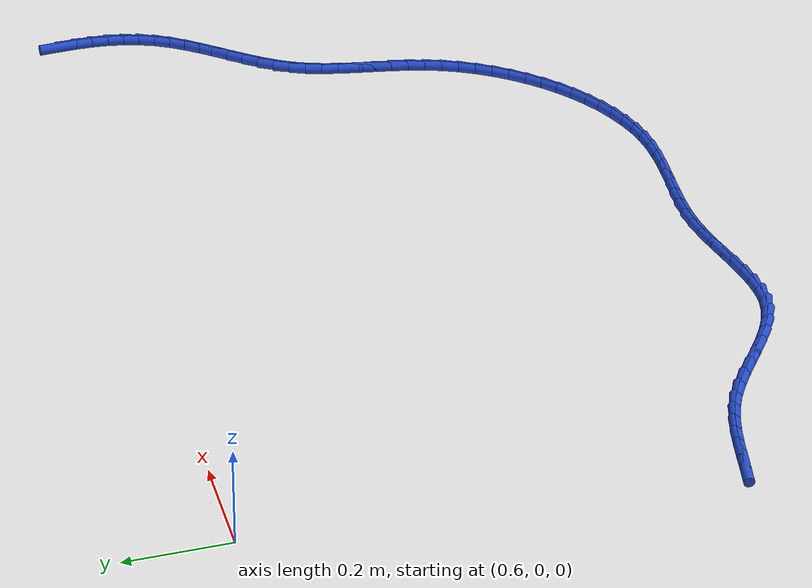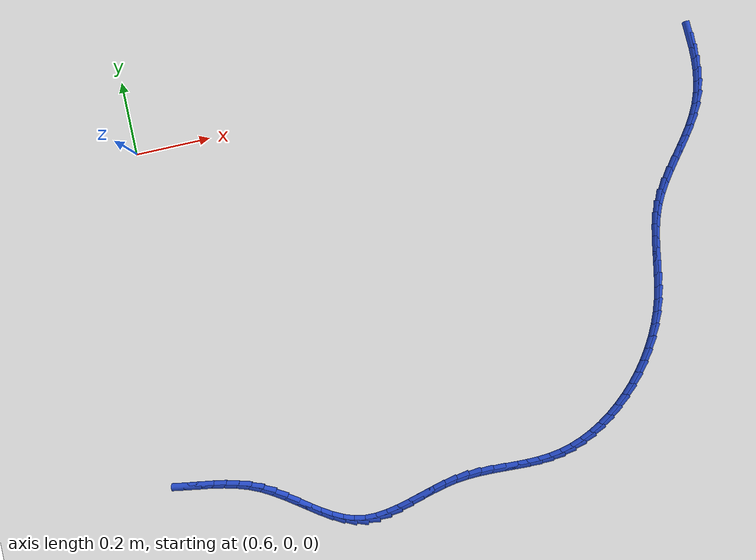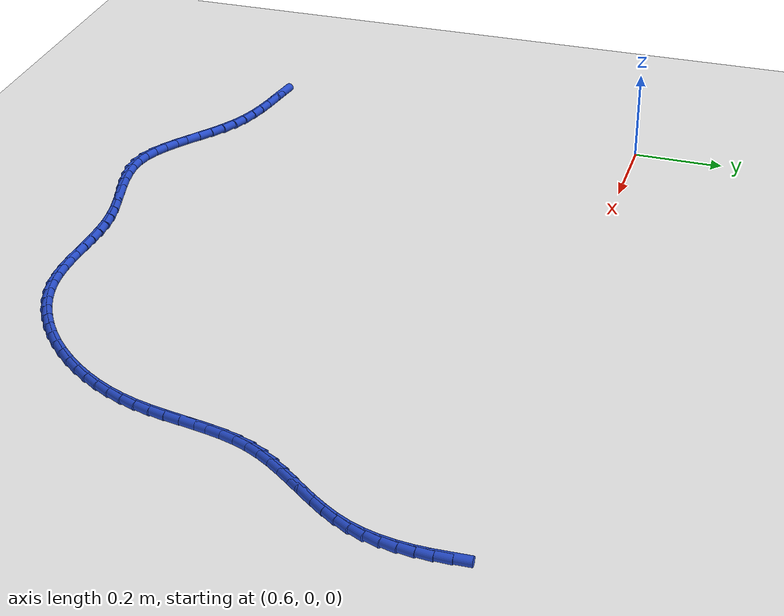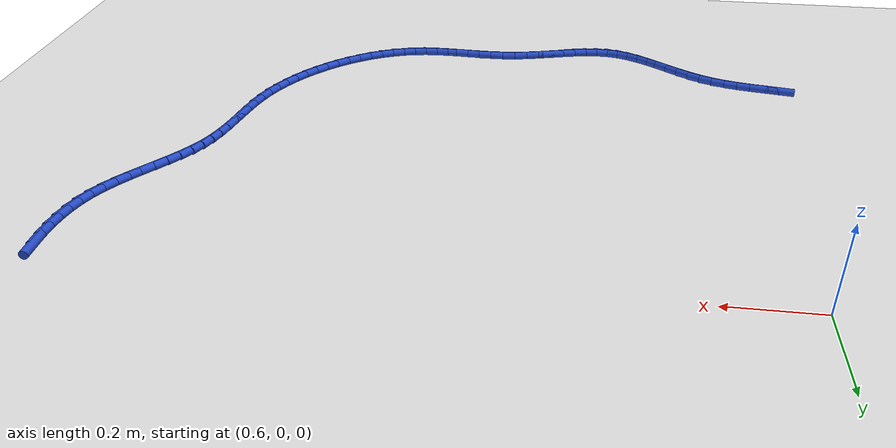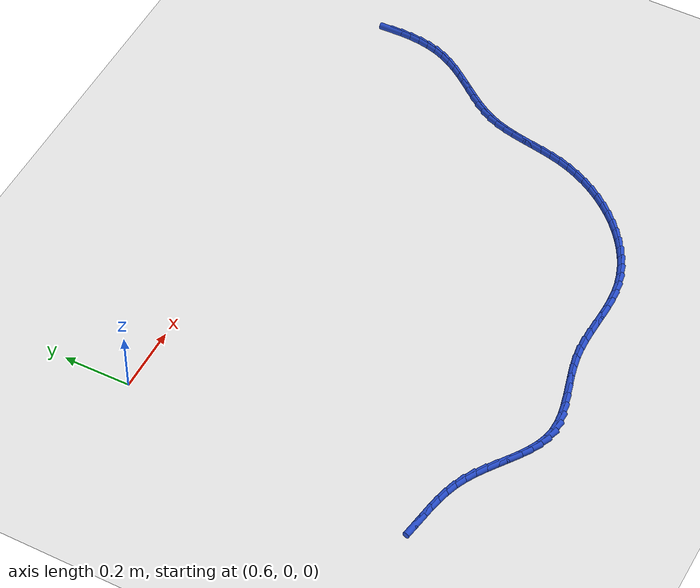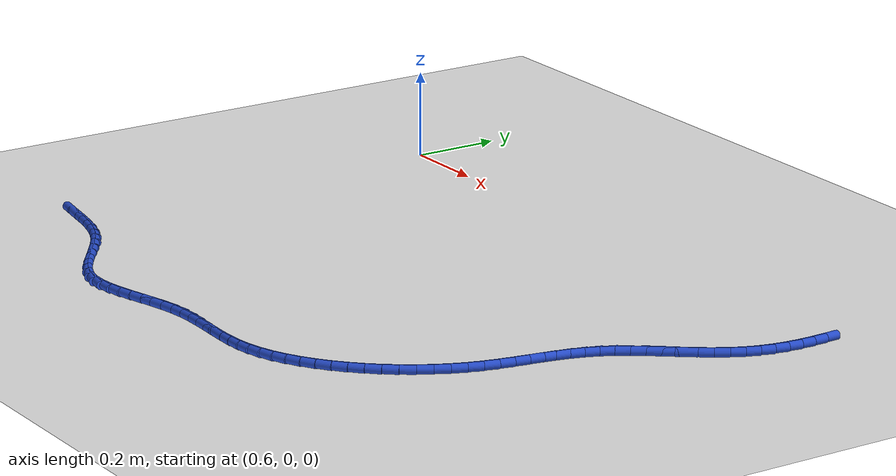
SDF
<sdf version="1.6">
 <world name="default">
  <model name="ground_plane">
   <static>1</static>
   <link name="link">
    <collision name="collision">
     <geometry><plane><normal>0 0 1</normal><size>100 100</size></plane></geometry>
     <surface><friction><ode><mu>100</mu><mu2>50</mu2></ode></friction></surface>
    </collision>
    <visual name="visual">
     <cast_shadows>0</cast_shadows>
     <geometry><plane><normal>0 0 1</normal><size>100 100</size></plane></geometry>
     <material>
      <script><uri>file://media/materials/scripts/gazebo.material</uri><name>Gazebo/WhiteGlow</name></script>
     </material>
    </visual>
   </link>
  </model>
  <model name="line">
   <link name="link_105">
    <pose>2.127927049027705 -0.014934316921393406 0.01 0 1.57 -1.5420571778890628</pose>
    <collision name="collision">
     <geometry><cylinder><radius>0.01</radius><length>0.08</length></cylinder></geometry>
    </collision>
    <visual name="visual">
     <material>
      <script><name>Gazebo/Blue</name><uri>file://media/materials/scripts/gazebo.material</uri></script>
     </material>
     <geometry><cylinder><radius>0.01</radius><length>0.08</length></cylinder></geometry>
    </visual>
   </link>
   <link name="link_106">
    <pose>2.1288633648620032 -0.047505150641928034 0.01 0 1.57 1.539166648223108</pose>
    <collision name="collision">
     <geometry><cylinder><radius>0.01</radius><length>0.08</length></cylinder></geometry>
    </collision>
    <visual name="visual">
     <material>
      <script><name>Gazebo/Blue</name><uri>file://media/materials/scripts/gazebo.material</uri></script>
     </material>
     <geometry><cylinder><radius>0.01</radius><length>0.08</length></cylinder></geometry>
    </visual>
   </link>
   <link name="link_107">
    <pose>2.127848360419523 -0.07958470323934361 0.01 0 1.57 1.4695602687728024</pose>
    <collision name="collision">
     <geometry><cylinder><radius>0.01</radius><length>0.08</length></cylinder></geometry>
    </collision>
    <visual name="visual">
     <material>
      <script><name>Gazebo/Blue</name><uri>file://media/materials/scripts/gazebo.material</uri></script>
     </material>
     <geometry><cylinder><radius>0.01</radius><length>0.08</length></cylinder></geometry>
    </visual>
   </link>
   <link name="link_108">
    <pose>2.1246513000893077 -0.11105699657689093 0.01 0 1.57 1.3903411598003887</pose>
    <collision name="collision">
     <geometry><cylinder><radius>0.01</radius><length>0.08</length></cylinder></geometry>
    </collision>
    <visual name="visual">
     <material>
      <script><name>Gazebo/Blue</name><uri>file://media/materials/scripts/gazebo.material</uri></script>
     </material>
     <geometry><cylinder><radius>0.01</radius><length>0.08</length></cylinder></geometry>
    </visual>
   </link>
   <link name="link_109">
    <pose>2.119041448260406 -0.14180605251781997 0.01 0 1.57 1.3015546267704148</pose>
    <collision name="collision">
     <geometry><cylinder><radius>0.01</radius><length>0.08</length></cylinder></geometry>
    </collision>
    <visual name="visual">
     <material>
      <script><name>Gazebo/Blue</name><uri>file://media/materials/scripts/gazebo.material</uri></script>
     </material>
     <geometry><cylinder><radius>0.01</radius><length>0.08</length></cylinder></geometry>
    </visual>
   </link>
   <link name="link_110">
    <pose>2.110788069321864 -0.17171589292538092 0.01 0 1.57 1.2038861024679162</pose>
    <collision name="collision">
     <geometry><cylinder><radius>0.01</radius><length>0.08</length></cylinder></geometry>
    </collision>
    <visual name="visual">
     <material>
      <script><name>Gazebo/Blue</name><uri>file://media/materials/scripts/gazebo.material</uri></script>
     </material>
     <geometry><cylinder><radius>0.01</radius><length>0.08</length></cylinder></geometry>
    </visual>
   </link>
   <link name="link_111">
    <pose>2.0996604276627293 -0.20067053966282372 0.01 0 1.57 1.1017450329079266</pose>
    <collision name="collision">
     <geometry><cylinder><radius>0.01</radius><length>0.08</length></cylinder></geometry>
    </collision>
    <visual name="visual">
     <material>
      <script><name>Gazebo/Blue</name><uri>file://media/materials/scripts/gazebo.material</uri></script>
     </material>
     <geometry><cylinder><radius>0.01</radius><length>0.08</length></cylinder></geometry>
    </visual>
   </link>
   <link name="link_112">
    <pose>2.0855129344408874 -0.2285873663614673 0.01 0 1.57 1.0170549605644297</pose>
    <collision name="collision">
     <geometry><cylinder><radius>0.01</radius><length>0.08</length></cylinder></geometry>
    </collision>
    <visual name="visual">
     <material>
      <script><name>Gazebo/Blue</name><uri>file://media/materials/scripts/gazebo.material</uri></script>
     </material>
     <geometry><cylinder><radius>0.01</radius><length>0.08</length></cylinder></geometry>
    </visual>
   </link>
   <link name="link_113">
    <pose>2.068800299482606 -0.25561888208092465 0.01 0 1.57 0.9579107602247918</pose>
    <collision name="collision">
     <geometry><cylinder><radius>0.01</radius><length>0.08</length></cylinder></geometry>
    </collision>
    <visual name="visual">
     <material>
      <script><name>Gazebo/Blue</name><uri>file://media/materials/scripts/gazebo.material</uri></script>
     </material>
     <geometry><cylinder><radius>0.01</radius><length>0.08</length></cylinder></geometry>
    </visual>
   </link>
   <link name="link_114">
    <pose>2.0502353490705247 -0.28201869942595853 0.01 0 1.57 0.92271565101847</pose>
    <collision name="collision">
     <geometry><cylinder><radius>0.01</radius><length>0.08</length></cylinder></geometry>
    </collision>
    <visual name="visual">
     <material>
      <script><name>Gazebo/Blue</name><uri>file://media/materials/scripts/gazebo.material</uri></script>
     </material>
     <geometry><cylinder><radius>0.01</radius><length>0.08</length></cylinder></geometry>
    </visual>
   </link>
   <link name="link_115">
    <pose>2.0305319101449983 -0.3080408229563561 0.01 0 1.57 0.9101171733580589</pose>
    <collision name="collision">
     <geometry><cylinder><radius>0.01</radius><length>0.08</length></cylinder></geometry>
    </collision>
    <visual name="visual">
     <material>
      <script><name>Gazebo/Blue</name><uri>file://media/materials/scripts/gazebo.material</uri></script>
     </material>
     <geometry><cylinder><radius>0.01</radius><length>0.08</length></cylinder></geometry>
    </visual>
   </link>
   <link name="link_116">
    <pose>2.0104038096463808 -0.33393925723190465 0.01 0 1.57 0.919537152113355</pose>
    <collision name="collision">
     <geometry><cylinder><radius>0.01</radius><length>0.08</length></cylinder></geometry>
    </collision>
    <visual name="visual">
     <material>
      <script><name>Gazebo/Blue</name><uri>file://media/materials/scripts/gazebo.material</uri></script>
     </material>
     <geometry><cylinder><radius>0.01</radius><length>0.08</length></cylinder></geometry>
    </visual>
   </link>
   <link name="link_117">
    <pose>1.9905648745150255 -0.3599680068123914 0.01 0 1.57 0.9513127651278334</pose>
    <collision name="collision">
     <geometry><cylinder><radius>0.01</radius><length>0.08</length></cylinder></geometry>
    </collision>
    <visual name="visual">
     <material>
      <script><name>Gazebo/Blue</name><uri>file://media/materials/scripts/gazebo.material</uri></script>
     </material>
     <geometry><cylinder><radius>0.01</radius><length>0.08</length></cylinder></geometry>
    </visual>
   </link>
   <link name="link_118">
    <pose>1.9717289316912863 -0.38638107625760343 0.01 0 1.57 1.0065812385501156</pose>
    <collision name="collision">
     <geometry><cylinder><radius>0.01</radius><length>0.08</length></cylinder></geometry>
    </collision>
    <visual name="visual">
     <material>
      <script><name>Gazebo/Blue</name><uri>file://media/materials/scripts/gazebo.material</uri></script>
     </material>
     <geometry><cylinder><radius>0.01</radius><length>0.08</length></cylinder></geometry>
    </visual>
   </link>
   <link name="link_119">
    <pose>1.9546098081155177 -0.413432470127329 0.01 0 1.57 1.0868438477391245</pose>
    <collision name="collision">
     <geometry><cylinder><radius>0.01</radius><length>0.08</length></cylinder></geometry>
    </collision>
    <visual name="visual">
     <material>
      <script><name>Gazebo/Blue</name><uri>file://media/materials/scripts/gazebo.material</uri></script>
     </material>
     <geometry><cylinder><radius>0.01</radius><length>0.08</length></cylinder></geometry>
    </visual>
   </link>
   <link name="link_120">
    <pose>1.9399213307280732 -0.44137619298135367 0.01 0 1.57 1.1860012703031202</pose>
    <collision name="collision">
     <geometry><cylinder><radius>0.01</radius><length>0.08</length></cylinder></geometry>
    </collision>
    <visual name="visual">
     <material>
      <script><name>Gazebo/Blue</name><uri>file://media/materials/scripts/gazebo.material</uri></script>
     </material>
     <geometry><cylinder><radius>0.01</radius><length>0.08</length></cylinder></geometry>
    </visual>
   </link>
   <link name="link_121">
    <pose>1.9281673302751468 -0.47039960251246765 0.01 0 1.57 1.2720107968128591</pose>
    <collision name="collision">
     <geometry><cylinder><radius>0.01</radius><length>0.08</length></cylinder></geometry>
    </collision>
    <visual name="visual">
     <material>
      <script><name>Gazebo/Blue</name><uri>file://media/materials/scripts/gazebo.material</uri></script>
     </material>
     <geometry><cylinder><radius>0.01</radius><length>0.08</length></cylinder></geometry>
    </visual>
   </link>
   <link name="link_122">
    <pose>1.9189279767766039 -0.5003969125599491 0.01 0 1.57 1.334942716152788</pose>
    <collision name="collision">
     <geometry><cylinder><radius>0.01</radius><length>0.08</length></cylinder></geometry>
    </collision>
    <visual name="visual">
     <material>
      <script><name>Gazebo/Blue</name><uri>file://media/materials/scripts/gazebo.material</uri></script>
     </material>
     <geometry><cylinder><radius>0.01</radius><length>0.08</length></cylinder></geometry>
    </visual>
   </link>
   <link name="link_123">
    <pose>1.9115295633889557 -0.5311817636097663 0.01 0 1.57 1.3748109836931102</pose>
    <collision name="collision">
     <geometry><cylinder><radius>0.01</radius><length>0.08</length></cylinder></geometry>
    </collision>
    <visual name="visual">
     <material>
      <script><name>Gazebo/Blue</name><uri>file://media/materials/scripts/gazebo.material</uri></script>
     </material>
     <geometry><cylinder><radius>0.01</radius><length>0.08</length></cylinder></geometry>
    </visual>
   </link>
   <link name="link_124">
    <pose>1.9052983759470201 -0.562567793824188 0.01 0 1.57 1.3922915211109326</pose>
    <collision name="collision">
     <geometry><cylinder><radius>0.01</radius><length>0.08</length></cylinder></geometry>
    </collision>
    <visual name="visual">
     <material>
      <script><name>Gazebo/Blue</name><uri>file://media/materials/scripts/gazebo.material</uri></script>
     </material>
     <geometry><cylinder><radius>0.01</radius><length>0.08</length></cylinder></geometry>
    </visual>
   </link>
   <link name="link_125">
    <pose>1.8995607002856147 -0.5943686413654844 0.01 0 1.57 1.388092280318739</pose>
    <collision name="collision">
     <geometry><cylinder><radius>0.01</radius><length>0.08</length></cylinder></geometry>
    </collision>
    <visual name="visual">
     <material>
      <script><name>Gazebo/Blue</name><uri>file://media/materials/scripts/gazebo.material</uri></script>
     </material>
     <geometry><cylinder><radius>0.01</radius><length>0.08</length></cylinder></geometry>
    </visual>
   </link>
   <link name="link_126">
    <pose>1.893642822239557 -0.6263979443959234 0.01 0 1.57 1.362705372906539</pose>
    <collision name="collision">
     <geometry><cylinder><radius>0.01</radius><length>0.08</length></cylinder></geometry>
    </collision>
    <visual name="visual">
     <material>
      <script><name>Gazebo/Blue</name><uri>file://media/materials/scripts/gazebo.material</uri></script>
     </material>
     <geometry><cylinder><radius>0.01</radius><length>0.08</length></cylinder></geometry>
    </visual>
   </link>
   <link name="link_127">
    <pose>1.8868710276436658 -0.6584693410777749 0.01 0 1.57 1.3164760340896264</pose>
    <collision name="collision">
     <geometry><cylinder><radius>0.01</radius><length>0.08</length></cylinder></geometry>
    </collision>
    <visual name="visual">
     <material>
      <script><name>Gazebo/Blue</name><uri>file://media/materials/scripts/gazebo.material</uri></script>
     </material>
     <geometry><cylinder><radius>0.01</radius><length>0.08</length></cylinder></geometry>
    </visual>
   </link>
   <link name="link_128">
    <pose>1.8785716023327579 -0.690396469573308 0.01 0 1.57 1.250534209592732</pose>
    <collision name="collision">
     <geometry><cylinder><radius>0.01</radius><length>0.08</length></cylinder></geometry>
    </collision>
    <visual name="visual">
     <material>
      <script><name>Gazebo/Blue</name><uri>file://media/materials/scripts/gazebo.material</uri></script>
     </material>
     <geometry><cylinder><radius>0.01</radius><length>0.08</length></cylinder></geometry>
    </visual>
   </link>
   <link name="link_129">
    <pose>1.8680916317089928 -0.7219930689998038 0.01 0 1.57 1.1773505461855036</pose>
    <collision name="collision">
     <geometry><cylinder><radius>0.01</radius><length>0.08</length></cylinder></geometry>
    </collision>
    <visual name="visual">
     <material>
      <script><name>Gazebo/Blue</name><uri>file://media/materials/scripts/gazebo.material</uri></script>
     </material>
     <geometry><cylinder><radius>0.01</radius><length>0.08</length></cylinder></geometry>
    </visual>
   </link>
   <link name="link_130">
    <pose>1.855189926185268 -0.7530748768672316 0.01 0 1.57 1.1072919873184106</pose>
    <collision name="collision">
     <geometry><cylinder><radius>0.01</radius><length>0.08</length></cylinder></geometry>
    </collision>
    <visual name="visual">
     <material>
      <script><name>Gazebo/Blue</name><uri>file://media/materials/scripts/gazebo.material</uri></script>
     </material>
     <geometry><cylinder><radius>0.01</radius><length>0.08</length></cylinder></geometry>
    </visual>
   </link>
   <link name="link_131">
    <pose>1.8400030735576856 -0.783459464306401 0.01 0 1.57 1.0399406071361172</pose>
    <collision name="collision">
     <geometry><cylinder><radius>0.01</radius><length>0.08</length></cylinder></geometry>
    </collision>
    <visual name="visual">
     <material>
      <script><name>Gazebo/Blue</name><uri>file://media/materials/scripts/gazebo.material</uri></script>
     </material>
     <geometry><cylinder><radius>0.01</radius><length>0.08</length></cylinder></geometry>
    </visual>
   </link>
   <link name="link_132">
    <pose>1.8226816559002614 -0.8129644703722518 0.01 0 1.57 0.97448284143933</pose>
    <collision name="collision">
     <geometry><cylinder><radius>0.01</radius><length>0.08</length></cylinder></geometry>
    </collision>
    <visual name="visual">
     <material>
      <script><name>Gazebo/Blue</name><uri>file://media/materials/scripts/gazebo.material</uri></script>
     </material>
     <geometry><cylinder><radius>0.01</radius><length>0.08</length></cylinder></geometry>
    </visual>
   </link>
   <link name="link_133">
    <pose>1.803376255287013 -0.8414075341197209 0.01 0 1.57 0.9101149813527003</pose>
    <collision name="collision">
     <geometry><cylinder><radius>0.01</radius><length>0.08</length></cylinder></geometry>
    </collision>
    <visual name="visual">
     <material>
      <script><name>Gazebo/Blue</name><uri>file://media/materials/scripts/gazebo.material</uri></script>
     </material>
     <geometry><cylinder><radius>0.01</radius><length>0.08</length></cylinder></geometry>
    </visual>
   </link>
   <link name="link_134">
    <pose>1.782237453791957 -0.8686062946037479 0.01 0 1.57 0.8460409471744731</pose>
    <collision name="collision">
     <geometry><cylinder><radius>0.01</radius><length>0.08</length></cylinder></geometry>
    </collision>
    <visual name="visual">
     <material>
      <script><name>Gazebo/Blue</name><uri>file://media/materials/scripts/gazebo.material</uri></script>
     </material>
     <geometry><cylinder><radius>0.01</radius><length>0.08</length></cylinder></geometry>
    </visual>
   </link>
   <link name="link_135">
    <pose>1.759415833489109 -0.8943783908792715 0.01 0 1.57 0.7814658259945908</pose>
    <collision name="collision">
     <geometry><cylinder><radius>0.01</radius><length>0.08</length></cylinder></geometry>
    </collision>
    <visual name="visual">
     <material>
      <script><name>Gazebo/Blue</name><uri>file://media/materials/scripts/gazebo.material</uri></script>
     </material>
     <geometry><cylinder><radius>0.01</radius><length>0.08</length></cylinder></geometry>
    </visual>
   </link>
   <link name="link_136">
    <pose>1.7350619764524873 -0.9185414620012307 0.01 0 1.57 0.7155882249536992</pose>
    <collision name="collision">
     <geometry><cylinder><radius>0.01</radius><length>0.08</length></cylinder></geometry>
    </collision>
    <visual name="visual">
     <material>
      <script><name>Gazebo/Blue</name><uri>file://media/materials/scripts/gazebo.material</uri></script>
     </material>
     <geometry><cylinder><radius>0.01</radius><length>0.08</length></cylinder></geometry>
    </visual>
   </link>
   <link name="link_137">
    <pose>1.7093264647561062 -0.9409131470245636 0.01 0 1.57 0.6475942981298243</pose>
    <collision name="collision">
     <geometry><cylinder><radius>0.01</radius><length>0.08</length></cylinder></geometry>
    </collision>
    <visual name="visual">
     <material>
      <script><name>Gazebo/Blue</name><uri>file://media/materials/scripts/gazebo.material</uri></script>
     </material>
     <geometry><cylinder><radius>0.01</radius><length>0.08</length></cylinder></geometry>
    </visual>
   </link>
   <link name="link_138">
    <pose>1.6823598804739834 -0.96131108500421 0.01 0 1.57 0.5766566785957256</pose>
    <collision name="collision">
     <geometry><cylinder><radius>0.01</radius><length>0.08</length></cylinder></geometry>
    </collision>
    <visual name="visual">
     <material>
      <script><name>Gazebo/Blue</name><uri>file://media/materials/scripts/gazebo.material</uri></script>
     </material>
     <geometry><cylinder><radius>0.01</radius><length>0.08</length></cylinder></geometry>
    </visual>
   </link>
   <link name="link_139">
    <pose>1.6543128056801353 -0.9795529149951071 0.01 0 1.57 0.5019424617344164</pose>
    <collision name="collision">
     <geometry><cylinder><radius>0.01</radius><length>0.08</length></cylinder></geometry>
    </collision>
    <visual name="visual">
     <material>
      <script><name>Gazebo/Blue</name><uri>file://media/materials/scripts/gazebo.material</uri></script>
     </material>
     <geometry><cylinder><radius>0.01</radius><length>0.08</length></cylinder></geometry>
    </visual>
   </link>
   <link name="link_140">
    <pose>1.6253358224485788 -0.9954562760521942 0.01 0 1.57 0.4226356903004382</pose>
    <collision name="collision">
     <geometry><cylinder><radius>0.01</radius><length>0.08</length></cylinder></geometry>
    </collision>
    <visual name="visual">
     <material>
      <script><name>Gazebo/Blue</name><uri>file://media/materials/scripts/gazebo.material</uri></script>
     </material>
     <geometry><cylinder><radius>0.01</radius><length>0.08</length></cylinder></geometry>
    </visual>
   </link>
   <link name="link_141">
    <pose>1.5955795128533303 -1.0088388072304106 0.01 0 1.57 0.3379810263555821</pose>
    <collision name="collision">
     <geometry><cylinder><radius>0.01</radius><length>0.08</length></cylinder></geometry>
    </collision>
    <visual name="visual">
     <material>
      <script><name>Gazebo/Blue</name><uri>file://media/materials/scripts/gazebo.material</uri></script>
     </material>
     <geometry><cylinder><radius>0.01</radius><length>0.08</length></cylinder></geometry>
    </visual>
   </link>
   <link name="link_142">
    <pose>1.565194458968406 -1.0195181475846944 0.01 0 1.57 0.24735539156995281</pose>
    <collision name="collision">
     <geometry><cylinder><radius>0.01</radius><length>0.08</length></cylinder></geometry>
    </collision>
    <visual name="visual">
     <material>
      <script><name>Gazebo/Blue</name><uri>file://media/materials/scripts/gazebo.material</uri></script>
     </material>
     <geometry><cylinder><radius>0.01</radius><length>0.08</length></cylinder></geometry>
    </visual>
   </link>
   <link name="link_143">
    <pose>1.5343312428678235 -1.0273119361699847 0.01 0 1.57 0.15238115490402032</pose>
    <collision name="collision">
     <geometry><cylinder><radius>0.01</radius><length>0.08</length></cylinder></geometry>
    </collision>
    <visual name="visual">
     <material>
      <script><name>Gazebo/Blue</name><uri>file://media/materials/scripts/gazebo.material</uri></script>
     </material>
     <geometry><cylinder><radius>0.01</radius><length>0.08</length></cylinder></geometry>
    </visual>
   </link>
   <link name="link_144">
    <pose>1.5031307813240036 -1.0321034423544446 0.01 0 1.57 0.0701363854756765</pose>
    <collision name="collision">
     <geometry><cylinder><radius>0.01</radius><length>0.08</length></cylinder></geometry>
    </collision>
    <visual name="visual">
     <material>
      <script><name>Gazebo/Blue</name><uri>file://media/materials/scripts/gazebo.material</uri></script>
     </material>
     <geometry><cylinder><radius>0.01</radius><length>0.08</length></cylinder></geometry>
    </visual>
   </link>
   <link name="link_145">
    <pose>1.4716546491298854 -1.0343146914793515 0.01 0 1.57 0.009997819135465224</pose>
    <collision name="collision">
     <geometry><cylinder><radius>0.01</radius><length>0.08</length></cylinder></geometry>
    </collision>
    <visual name="visual">
     <material>
      <script><name>Gazebo/Blue</name><uri>file://media/materials/scripts/gazebo.material</uri></script>
     </material>
     <geometry><cylinder><radius>0.01</radius><length>0.08</length></cylinder></geometry>
    </visual>
   </link>
   <link name="link_146">
    <pose>1.4399255103837256 -1.0346319242397437 0.01 0 1.57 -0.027800428637546972</pose>
    <collision name="collision">
     <geometry><cylinder><radius>0.01</radius><length>0.08</length></cylinder></geometry>
    </collision>
    <visual name="visual">
     <material>
      <script><name>Gazebo/Blue</name><uri>file://media/materials/scripts/gazebo.material</uri></script>
     </material>
     <geometry><cylinder><radius>0.01</radius><length>0.08</length></cylinder></geometry>
    </visual>
   </link>
   <link name="link_147">
    <pose>1.407965761269522 -1.0337432005492904 0.01 0 1.57 -0.0436995254306826</pose>
    <collision name="collision">
     <geometry><cylinder><radius>0.01</radius><length>0.08</length></cylinder></geometry>
    </collision>
    <visual name="visual">
     <material>
      <script><name>Gazebo/Blue</name><uri>file://media/materials/scripts/gazebo.material</uri></script>
     </material>
     <geometry><cylinder><radius>0.01</radius><length>0.08</length></cylinder></geometry>
    </visual>
   </link>
   <link name="link_148">
    <pose>1.3757977979712714 -1.03233658032166 0.01 0 1.57 -0.038198175650141594</pose>
    <collision name="collision">
     <geometry><cylinder><radius>0.01</radius><length>0.08</length></cylinder></geometry>
    </collision>
    <visual name="visual">
     <material>
      <script><name>Gazebo/Blue</name><uri>file://media/materials/scripts/gazebo.material</uri></script>
     </material>
     <geometry><cylinder><radius>0.01</radius><length>0.08</length></cylinder></geometry>
    </visual>
   </link>
   <link name="link_149">
    <pose>1.3434440166729709 -1.0311001234705217 0.01 0 1.57 -0.011631274155324873</pose>
    <collision name="collision">
     <geometry><cylinder><radius>0.01</radius><length>0.08</length></cylinder></geometry>
    </collision>
    <visual name="visual">
     <material>
      <script><name>Gazebo/Blue</name><uri>file://media/materials/scripts/gazebo.material</uri></script>
     </material>
     <geometry><cylinder><radius>0.01</radius><length>0.08</length></cylinder></geometry>
    </visual>
   </link>
   <link name="link_150">
    <pose>1.310926813558618 -1.030721889909544 0.01 0 1.57 0.035750621343602317</pose>
    <collision name="collision">
     <geometry><cylinder><radius>0.01</radius><length>0.08</length></cylinder></geometry>
    </collision>
    <visual name="visual">
     <material>
      <script><name>Gazebo/Blue</name><uri>file://media/materials/scripts/gazebo.material</uri></script>
     </material>
     <geometry><cylinder><radius>0.01</radius><length>0.08</length></cylinder></geometry>
    </visual>
   </link>
   <link name="link_151">
    <pose>1.2782685848122095 -1.0318899395523962 0.01 0 1.57 0.10343211611994696</pose>
    <collision name="collision">
     <geometry><cylinder><radius>0.01</radius><length>0.08</length></cylinder></geometry>
    </collision>
    <visual name="visual">
     <material>
      <script><name>Gazebo/Blue</name><uri>file://media/materials/scripts/gazebo.material</uri></script>
     </material>
     <geometry><cylinder><radius>0.01</radius><length>0.08</length></cylinder></geometry>
    </visual>
   </link>
   <link name="link_152">
    <pose>1.2454917312179359 -1.0352922604477182 0.01 0 1.57 0.1805689761486234</pose>
    <collision name="collision">
     <geometry><cylinder><radius>0.01</radius><length>0.08</length></cylinder></geometry>
    </collision>
    <visual name="visual">
     <material>
      <script><name>Gazebo/Blue</name><uri>file://media/materials/scripts/gazebo.material</uri></script>
     </material>
     <geometry><cylinder><radius>0.01</radius><length>0.08</length></cylinder></geometry>
    </visual>
   </link>
   <link name="link_153">
    <pose>1.212639596839226 -1.0412896609003375 0.01 0 1.57 0.23546889057979717</pose>
    <collision name="collision">
     <geometry><cylinder><radius>0.01</radius><length>0.08</length></cylinder></geometry>
    </collision>
    <visual name="visual">
     <material>
      <script><name>Gazebo/Blue</name><uri>file://media/materials/scripts/gazebo.material</uri></script>
     </material>
     <geometry><cylinder><radius>0.01</radius><length>0.08</length></cylinder></geometry>
    </visual>
   </link>
   <link name="link_154">
    <pose>1.1798246805471002 -1.049162600146099 0.01 0 1.57 0.2634408100997699</pose>
    <collision name="collision">
     <geometry><cylinder><radius>0.01</radius><length>0.08</length></cylinder></geometry>
    </collision>
    <visual name="visual">
     <material>
      <script><name>Gazebo/Blue</name><uri>file://media/materials/scripts/gazebo.material</uri></script>
     </material>
     <geometry><cylinder><radius>0.01</radius><length>0.08</length></cylinder></geometry>
    </visual>
   </link>
   <link name="link_155">
    <pose>1.1471737350204234 -1.0579688618242795 0.01 0 1.57 0.26544227473119214</pose>
    <collision name="collision">
     <geometry><cylinder><radius>0.01</radius><length>0.08</length></cylinder></geometry>
    </collision>
    <visual name="visual">
     <material>
      <script><name>Gazebo/Blue</name><uri>file://media/materials/scripts/gazebo.material</uri></script>
     </material>
     <geometry><cylinder><radius>0.01</radius><length>0.08</length></cylinder></geometry>
    </visual>
   </link>
   <link name="link_156">
    <pose>1.1148135129380616 -1.066766229574158 0.01 0 1.57 0.24086625849142163</pose>
    <collision name="collision">
     <geometry><cylinder><radius>0.01</radius><length>0.08</length></cylinder></geometry>
    </collision>
    <visual name="visual">
     <material>
      <script><name>Gazebo/Blue</name><uri>file://media/materials/scripts/gazebo.material</uri></script>
     </material>
     <geometry><cylinder><radius>0.01</radius><length>0.08</length></cylinder></geometry>
    </visual>
   </link>
   <link name="link_157">
    <pose>1.0828707669788789 -1.0746124870350113 0.01 0 1.57 0.1873688442834111</pose>
    <collision name="collision">
     <geometry><cylinder><radius>0.01</radius><length>0.08</length></cylinder></geometry>
    </collision>
    <visual name="visual">
     <material>
      <script><name>Gazebo/Blue</name><uri>file://media/materials/scripts/gazebo.material</uri></script>
     </material>
     <geometry><cylinder><radius>0.01</radius><length>0.08</length></cylinder></geometry>
    </visual>
   </link>
   <link name="link_158">
    <pose>1.0514722498217421 -1.080565417846118 0.01 0 1.57 0.10110664365014613</pose>
    <collision name="collision">
     <geometry><cylinder><radius>0.01</radius><length>0.08</length></cylinder></geometry>
    </collision>
    <visual name="visual">
     <material>
      <script><name>Gazebo/Blue</name><uri>file://media/materials/scripts/gazebo.material</uri></script>
     </material>
     <geometry><cylinder><radius>0.01</radius><length>0.08</length></cylinder></geometry>
    </visual>
   </link>
   <link name="link_159">
    <pose>1.0207447141455162 -1.0836828056467551 0.01 0 1.57 -0.022060435002364962</pose>
    <collision name="collision">
     <geometry><cylinder><radius>0.01</radius><length>0.08</length></cylinder></geometry>
    </collision>
    <visual name="visual">
     <material>
      <script><name>Gazebo/Blue</name><uri>file://media/materials/scripts/gazebo.material</uri></script>
     </material>
     <geometry><cylinder><radius>0.01</radius><length>0.08</length></cylinder></geometry>
    </visual>
   </link>
   <link name="link_160">
    <pose>0.9908149126290658 -1.0830224340762011 0.01 0 1.57 -0.18232902540482943</pose>
    <collision name="collision">
     <geometry><cylinder><radius>0.01</radius><length>0.08</length></cylinder></geometry>
    </collision>
    <visual name="visual">
     <material>
      <script><name>Gazebo/Blue</name><uri>file://media/materials/scripts/gazebo.material</uri></script>
     </material>
     <geometry><cylinder><radius>0.01</radius><length>0.08</length></cylinder></geometry>
    </visual>
   </link>
   <link name="link_161">
    <pose>0.9618034096808337 -1.0776733889066015 0.01 0 1.57 -0.3438651031392934</pose>
    <collision name="collision">
     <geometry><cylinder><radius>0.01</radius><length>0.08</length></cylinder></geometry>
    </collision>
    <visual name="visual">
     <material>
      <script><name>Gazebo/Blue</name><uri>file://media/materials/scripts/gazebo.material</uri></script>
     </material>
     <geometry><cylinder><radius>0.01</radius><length>0.08</length></cylinder></geometry>
    </visual>
   </link>
   <link name="link_162">
    <pose>0.9336587242518208 -1.067595013574978 0.01 0 1.57 -0.46728960441944495</pose>
    <collision name="collision">
     <geometry><cylinder><radius>0.01</radius><length>0.08</length></cylinder></geometry>
    </collision>
    <visual name="visual">
     <material>
      <script><name>Gazebo/Blue</name><uri>file://media/materials/scripts/gazebo.material</uri></script>
     </material>
     <geometry><cylinder><radius>0.01</radius><length>0.08</length></cylinder></geometry>
    </visual>
   </link>
   <link name="link_163">
    <pose>0.9061389978527367 -1.05370963786567 0.01 0 1.57 -0.5520451192139785</pose>
    <collision name="collision">
     <geometry><cylinder><radius>0.01</radius><length>0.08</length></cylinder></geometry>
    </collision>
    <visual name="visual">
     <material>
      <script><name>Gazebo/Blue</name><uri>file://media/materials/scripts/gazebo.material</uri></script>
     </material>
     <geometry><cylinder><radius>0.01</radius><length>0.08</length></cylinder></geometry>
    </visual>
   </link>
   <link name="link_164">
    <pose>0.8789925055407566 -1.0369894990522333 0.01 0 1.57 -0.602362438440819</pose>
    <collision name="collision">
     <geometry><cylinder><radius>0.01</radius><length>0.08</length></cylinder></geometry>
    </collision>
    <visual name="visual">
     <material>
      <script><name>Gazebo/Blue</name><uri>file://media/materials/scripts/gazebo.material</uri></script>
     </material>
     <geometry><cylinder><radius>0.01</radius><length>0.08</length></cylinder></geometry>
    </visual>
   </link>
   <link name="link_165">
    <pose>0.8519675223730584 -1.0184068344082267 0.01 0 1.57 -0.6221095479202736</pose>
    <collision name="collision">
     <geometry><cylinder><radius>0.01</radius><length>0.08</length></cylinder></geometry>
    </collision>
    <visual name="visual">
     <material>
      <script><name>Gazebo/Blue</name><uri>file://media/materials/scripts/gazebo.material</uri></script>
     </material>
     <geometry><cylinder><radius>0.01</radius><length>0.08</length></cylinder></geometry>
    </visual>
   </link>
   <link name="link_166">
    <pose>0.8248123234068175 -0.9989338812072069 0.01 0 1.57 -0.6135234353525587</pose>
    <collision name="collision">
     <geometry><cylinder><radius>0.01</radius><length>0.08</length></cylinder></geometry>
    </collision>
    <visual name="visual">
     <material>
      <script><name>Gazebo/Blue</name><uri>file://media/materials/scripts/gazebo.material</uri></script>
     </material>
     <geometry><cylinder><radius>0.01</radius><length>0.08</length></cylinder></geometry>
    </visual>
   </link>
   <link name="link_167">
    <pose>0.7972751836992105 -0.9795428767227311 0.01 0 1.57 -0.577018651748658</pose>
    <collision name="collision">
     <geometry><cylinder><radius>0.01</radius><length>0.08</length></cylinder></geometry>
    </collision>
    <visual name="visual">
     <material>
      <script><name>Gazebo/Blue</name><uri>file://media/materials/scripts/gazebo.material</uri></script>
     </material>
     <geometry><cylinder><radius>0.01</radius><length>0.08</length></cylinder></geometry>
    </visual>
   </link>
   <link name="link_168">
    <pose>0.7691043783074134 -0.9612060582283567 0.01 0 1.57 -0.511507579026494</pose>
    <collision name="collision">
     <geometry><cylinder><radius>0.01</radius><length>0.08</length></cylinder></geometry>
    </collision>
    <visual name="visual">
     <material>
      <script><name>Gazebo/Blue</name><uri>file://media/materials/scripts/gazebo.material</uri></script>
     </material>
     <geometry><cylinder><radius>0.01</radius><length>0.08</length></cylinder></geometry>
    </visual>
   </link>
   <link name="link_169">
    <pose>0.7400481822886026 -0.9448956629976407 0.01 0 1.57 -0.41733514305752006</pose>
    <collision name="collision">
     <geometry><cylinder><radius>0.01</radius><length>0.08</length></cylinder></geometry>
    </collision>
    <visual name="visual">
     <material>
      <script><name>Gazebo/Blue</name><uri>file://media/materials/scripts/gazebo.material</uri></script>
     </material>
     <geometry><cylinder><radius>0.01</radius><length>0.08</length></cylinder></geometry>
    </visual>
   </link>
   <link name="link_170">
    <pose>0.7098769892046436 -0.9315183583065916 0.01 0 1.57 -0.3224062967866597</pose>
    <collision name="collision">
     <geometry><cylinder><radius>0.01</radius><length>0.08</length></cylinder></geometry>
    </collision>
    <visual name="visual">
     <material>
      <script><name>Gazebo/Blue</name><uri>file://media/materials/scripts/gazebo.material</uri></script>
     </material>
     <geometry><cylinder><radius>0.01</radius><length>0.08</length></cylinder></geometry>
    </visual>
   </link>
   <link name="link_171">
    <pose>0.6786615326885383 -0.9210904574943674 0.01 0 1.57 -0.2482378524226489</pose>
    <collision name="collision">
     <geometry><cylinder><radius>0.01</radius><length>0.08</length></cylinder></geometry>
    </collision>
    <visual name="visual">
     <material>
      <script><name>Gazebo/Blue</name><uri>file://media/materials/scripts/gazebo.material</uri></script>
     </material>
     <geometry><cylinder><radius>0.01</radius><length>0.08</length></cylinder></geometry>
    </visual>
   </link>
   <link name="link_172">
    <pose>0.6466890260505918 -0.9129865229269422 0.01 0 1.57 -0.1953809976537192</pose>
    <collision name="collision">
     <geometry><cylinder><radius>0.01</radius><length>0.08</length></cylinder></geometry>
    </collision>
    <visual name="visual">
     <material>
      <script><name>Gazebo/Blue</name><uri>file://media/materials/scripts/gazebo.material</uri></script>
     </material>
     <geometry><cylinder><radius>0.01</radius><length>0.08</length></cylinder></geometry>
    </visual>
   </link>
   <link name="link_173">
    <pose>0.6142514633540594 -0.9065669444950872 0.01 0 1.57 -0.16334986910763008</pose>
    <collision name="collision">
     <geometry><cylinder><radius>0.01</radius><length>0.08</length></cylinder></geometry>
    </collision>
    <visual name="visual">
     <material>
      <script><name>Gazebo/Blue</name><uri>file://media/materials/scripts/gazebo.material</uri></script>
     </material>
     <geometry><cylinder><radius>0.01</radius><length>0.08</length></cylinder></geometry>
    </visual>
   </link>
   <link name="link_174">
    <pose>0.5816408386621971 -0.9011921120895728 0.01 0 1.57 -0.1517765469933785</pose>
    <collision name="collision">
     <geometry><cylinder><radius>0.01</radius><length>0.08</length></cylinder></geometry>
    </collision>
    <visual name="visual">
     <material>
      <script><name>Gazebo/Blue</name><uri>file://media/materials/scripts/gazebo.material</uri></script>
     </material>
     <geometry><cylinder><radius>0.01</radius><length>0.08</length></cylinder></geometry>
    </visual>
   </link>
   <link name="link_175">
    <pose>0.5491491460382606 -0.8962224156011703 0.01 0 1.57 -0.16081996887789773</pose>
    <collision name="collision">
     <geometry><cylinder><radius>0.01</radius><length>0.08</length></cylinder></geometry>
    </collision>
    <visual name="visual">
     <material>
      <script><name>Gazebo/Blue</name><uri>file://media/materials/scripts/gazebo.material</uri></script>
     </material>
     <geometry><cylinder><radius>0.01</radius><length>0.08</length></cylinder></geometry>
    </visual>
   </link>
  </model>
 </world>
</sdf>
